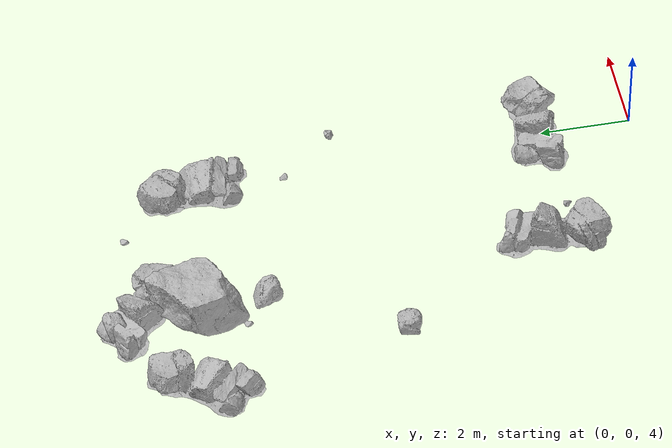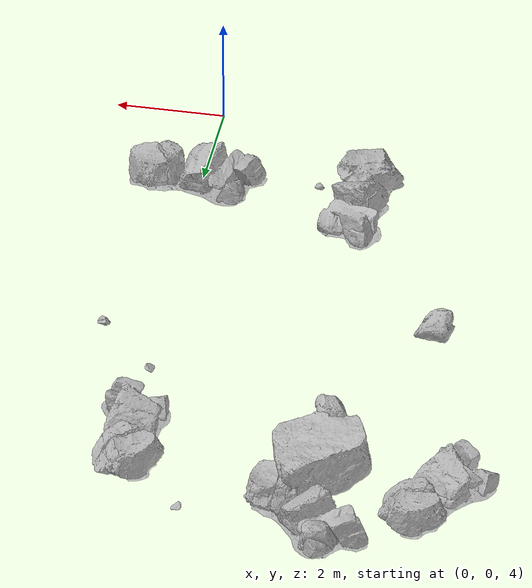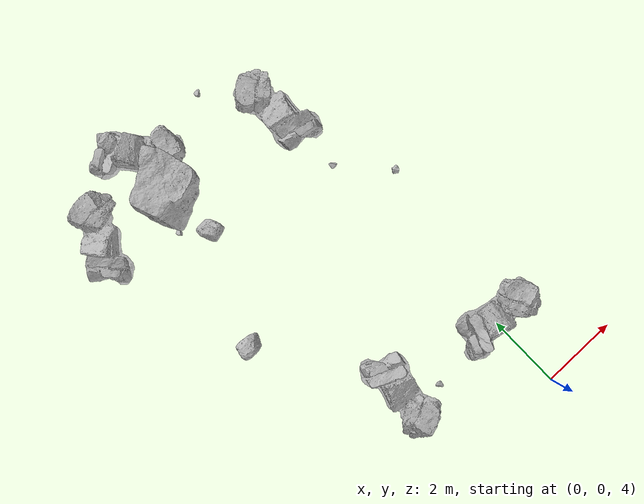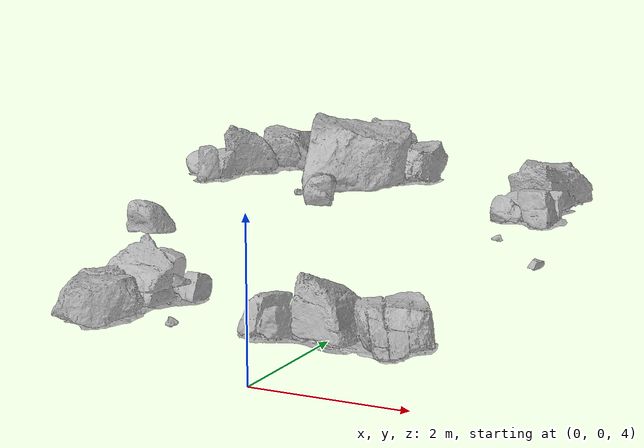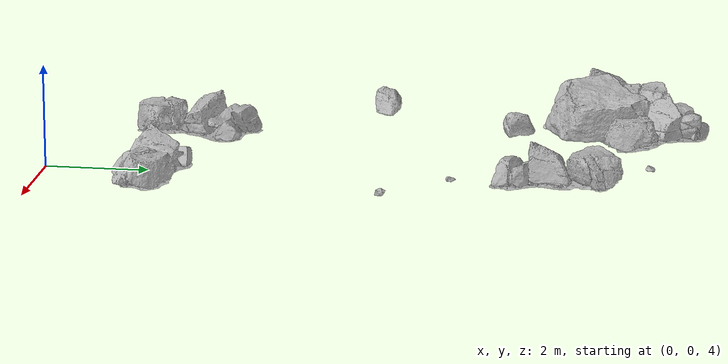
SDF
<sdf version="1.7">
 <world name="marsyard">
  <model name="Rock_22">
   <static>true</static>
   <pose>-3.9521 12.1130 4.0000 0.0000 0.0000 1.1903</pose>
   <link name="link">
    <visual name="visual">
     <geometry><mesh><uri>package://rock_generator/rocks_ws/rock_3/meshes/rock_3.stl</uri></mesh></geometry>
    </visual>
    <collision name="collision">
     <geometry><mesh><uri>package://rock_generator/rocks_ws/rock_3/meshes/rock_3.stl</uri></mesh></geometry>
    </collision>
   </link>
  </model>
  <model name="Rock_28">
   <static>true</static>
   <pose>-0.2693 9.8719 4.0000 0.0000 0.0000 -1.4507</pose>
   <link name="link">
    <visual name="visual">
     <geometry><mesh><uri>package://rock_generator/rocks_ws/rock_2/meshes/rock_2.stl</uri></mesh></geometry>
    </visual>
    <collision name="collision">
     <geometry><mesh><uri>package://rock_generator/rocks_ws/rock_2/meshes/rock_2.stl</uri></mesh></geometry>
    </collision>
   </link>
  </model>
  <model name="Rock_31">
   <static>true</static>
   <pose>-0.1739 7.7855 4.0000 0.0000 0.0000 1.7708</pose>
   <link name="link">
    <visual name="visual">
     <geometry><mesh><uri>package://rock_generator/rocks_ws/rock_7/meshes/rock_7.stl</uri></mesh></geometry>
    </visual>
    <collision name="collision">
     <geometry><mesh><uri>package://rock_generator/rocks_ws/rock_7/meshes/rock_7.stl</uri></mesh></geometry>
    </collision>
   </link>
  </model>
  <model name="Rock_49">
   <static>true</static>
   <pose>-4.8936 5.9250 4.0000 0.0000 0.0000 -2.2229</pose>
   <link name="link">
    <visual name="visual">
     <geometry><mesh><uri>package://rock_generator/rocks_ws/rock_3/meshes/rock_3.stl</uri></mesh></geometry>
    </visual>
    <collision name="collision">
     <geometry><mesh><uri>package://rock_generator/rocks_ws/rock_3/meshes/rock_3.stl</uri></mesh></geometry>
    </collision>
   </link>
  </model>
  <model name="Rock_51">
   <static>true</static>
   <pose>-4.1911 9.2847 4.0000 0.0000 0.0000 0.6335</pose>
   <link name="link">
    <visual name="visual">
     <geometry><mesh><uri>package://rock_generator/rocks_ws/rock_7/meshes/rock_7.stl</uri></mesh></geometry>
    </visual>
    <collision name="collision">
     <geometry><mesh><uri>package://rock_generator/rocks_ws/rock_7/meshes/rock_7.stl</uri></mesh></geometry>
    </collision>
   </link>
  </model>
  <model name="Rock_58">
   <static>true</static>
   <pose>-3.5370 8.8044 4.0000 0.0000 0.0000 -0.1781</pose>
   <link name="link">
    <visual name="visual">
     <geometry><mesh><uri>package://rock_generator/rocks_ws/rock_3/meshes/rock_3.stl</uri></mesh></geometry>
    </visual>
    <collision name="collision">
     <geometry><mesh><uri>package://rock_generator/rocks_ws/rock_3/meshes/rock_3.stl</uri></mesh></geometry>
    </collision>
   </link>
  </model>
  <model name="Rock_116">
   <static>true</static>
   <pose>-3.6890 10.4294 4.0000 0.0000 0.0000 -0.4123</pose>
   <link name="link">
    <visual name="visual">
     <geometry><mesh><uri>package://rock_generator/rocks_ws/rock_1/meshes/rock_1.stl</uri></mesh></geometry>
    </visual>
    <collision name="collision">
     <geometry><mesh><uri>package://rock_generator/rocks_ws/rock_1/meshes/rock_1.stl</uri></mesh></geometry>
    </collision>
   </link>
  </model>
  <model name="Rock_121">
   <static>true</static>
   <pose>-5.6880 10.5895 4.0000 0.0000 0.0000 -2.0504</pose>
   <link name="link">
    <visual name="visual">
     <geometry><mesh><uri>package://rock_generator/rocks_ws/rock_2/meshes/rock_2.stl</uri></mesh></geometry>
    </visual>
    <collision name="collision">
     <geometry><mesh><uri>package://rock_generator/rocks_ws/rock_2/meshes/rock_2.stl</uri></mesh></geometry>
    </collision>
   </link>
  </model>
  <model name="Rock_131">
   <static>true</static>
   <pose>0.2008 2.1078 4.0000 0.0000 0.0000 3.1163</pose>
   <link name="link">
    <visual name="visual">
     <geometry><mesh><uri>package://rock_generator/rocks_ws/rock_2/meshes/rock_2.stl</uri></mesh></geometry>
    </visual>
    <collision name="collision">
     <geometry><mesh><uri>package://rock_generator/rocks_ws/rock_2/meshes/rock_2.stl</uri></mesh></geometry>
    </collision>
   </link>
  </model>
  <model name="Rock_162">
   <static>true</static>
   <pose>-2.9780 2.3136 4.0000 0.0000 0.0000 1.4892</pose>
   <link name="link">
    <visual name="visual">
     <geometry><mesh><uri>package://rock_generator/rocks_ws/rock_2/meshes/rock_2.stl</uri></mesh></geometry>
    </visual>
    <collision name="collision">
     <geometry><mesh><uri>package://rock_generator/rocks_ws/rock_2/meshes/rock_2.stl</uri></mesh></geometry>
    </collision>
   </link>
  </model>
  <model name="Rock_175">
   <static>true</static>
   <pose>-1.3941 11.5094 4.0000 0.0000 0.0000 0.3510</pose>
   <link name="link">
    <visual name="visual">
     <geometry><mesh><uri>package://rock_generator/rocks_ws/rock_7/meshes/rock_7.stl</uri></mesh></geometry>
    </visual>
    <collision name="collision">
     <geometry><mesh><uri>package://rock_generator/rocks_ws/rock_7/meshes/rock_7.stl</uri></mesh></geometry>
    </collision>
   </link>
  </model>
  <model name="Rock_184">
   <static>true</static>
   <pose>-3.4900 11.4264 4.0000 0.0000 0.0000 2.4588</pose>
   <link name="link">
    <visual name="visual">
     <geometry><mesh><uri>package://rock_generator/rocks_ws/rock_2/meshes/rock_2.stl</uri></mesh></geometry>
    </visual>
    <collision name="collision">
     <geometry><mesh><uri>package://rock_generator/rocks_ws/rock_2/meshes/rock_2.stl</uri></mesh></geometry>
    </collision>
   </link>
  </model>
  <model name="Rock_189">
   <static>true</static>
   <pose>0.8901 6.5962 4.0000 0.0000 0.0000 1.5216</pose>
   <link name="link">
    <visual name="visual">
     <geometry><mesh><uri>package://rock_generator/rocks_ws/rock_9/meshes/rock_9.stl</uri></mesh></geometry>
    </visual>
    <collision name="collision">
     <geometry><mesh><uri>package://rock_generator/rocks_ws/rock_9/meshes/rock_9.stl</uri></mesh></geometry>
    </collision>
   </link>
  </model>
  <model name="Rock_190">
   <static>true</static>
   <pose>-2.1304 1.8917 4.0000 0.0000 0.0000 -1.4285</pose>
   <link name="link">
    <visual name="visual">
     <geometry><mesh><uri>package://rock_generator/rocks_ws/rock_7/meshes/rock_7.stl</uri></mesh></geometry>
    </visual>
    <collision name="collision">
     <geometry><mesh><uri>package://rock_generator/rocks_ws/rock_7/meshes/rock_7.stl</uri></mesh></geometry>
    </collision>
   </link>
  </model>
 </world>
</sdf>
